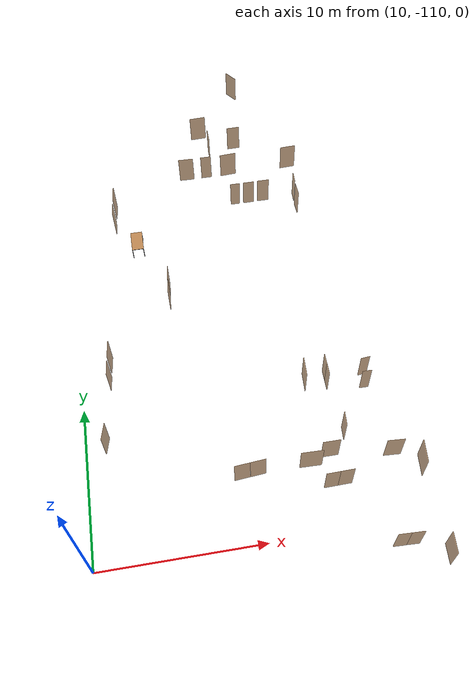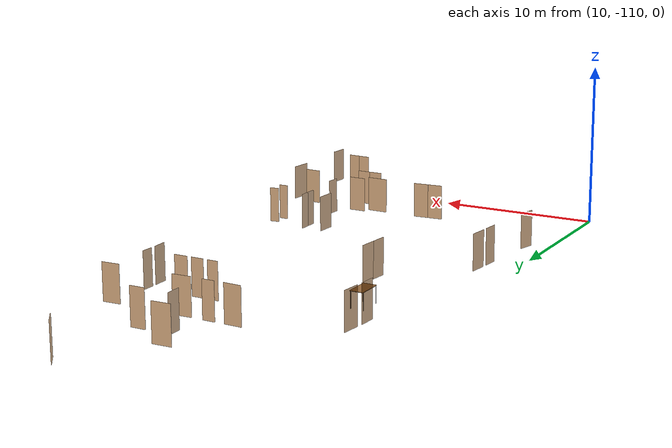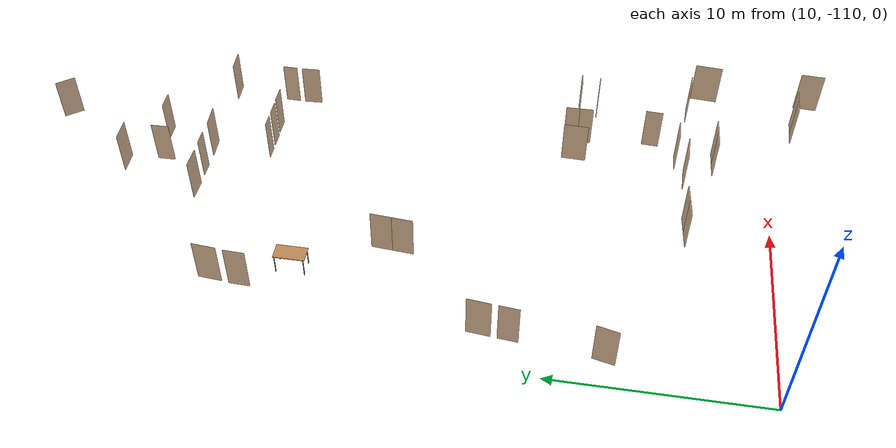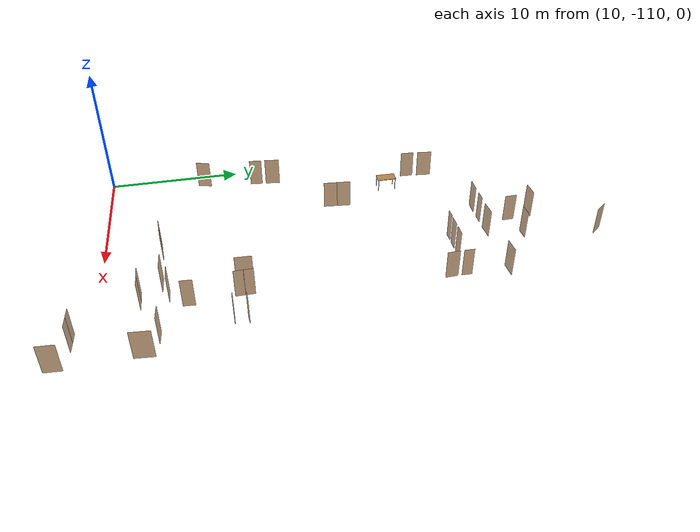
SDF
<sdf version="1.7">
 <world name="world">
  <include><uri>model://sun</uri></include>
  <include>
   <name>OpenRobotics/Table</name>
   <uri>model://Table</uri>
   <pose>14.445396386706355 -88.01514877491877 0.0 0 0 1.5708</pose>
   <static>True</static>
  </include>
  <model name="D52">
   <pose>23.254446349736916 -73.76182877562223 0.0 0 0 2.227248862246875</pose>
   <link name="right">
    <pose>0 0 1.11 0 0 0</pose>
    <visual name="right_visual">
     <geometry><box><size>1.0077316663653095 0.03 2.2</size></box></geometry>
     <material><ambient>0.5 0.25 0 0.6</ambient><diffuse>0.5 0.25 0 0.6</diffuse></material>
    </visual>
    <collision name="right_collision">
     <geometry><box><size>1.0077316663653095 0.03 2.2</size></box></geometry>
     <surface><contact><collide_bitmask>0x02</collide_bitmask></contact></surface>
    </collision>
    <inertial>
     <mass>50.0</mass>
     <inertia><ixx>20.17041666666667</ixx><iyy>24.398012964147522</iyy><izz>4.2350962974808475</izz></inertia>
    </inertial>
   </link>
   <joint name="right_joint" type="revolute">
    <parent>world</parent>
    <child>right</child>
    <axis><xyz>0 0 1</xyz><limit><lower>0</lower><upper>1.57</upper></limit></axis>
    <pose>0.5088658331826548 0 0 0 0 0</pose>
   </joint>
   <plugin name="door_D52" filename="libdoor.so">
    <v_max_door>0.5</v_max_door>
    <a_max_door>0.3</a_max_door>
    <a_nom_door>0.15</a_nom_door>
    <dx_min_door>0.01</dx_min_door>
    <f_max_door>500.0</f_max_door>
    <door name="D52" type="SwingDoor" left_joint_name="empty_joint" right_joint_name="right_joint"/>
   </plugin>
  </model>
  <model name="D53">
   <pose>20.62968694608043 -79.80845036280539 0.0 0 0 -1.5535147290072342</pose>
   <link name="right">
    <pose>0 0 1.11 0 0 0</pose>
    <visual name="right_visual">
     <geometry><box><size>0.879204578517562 0.03 2.2</size></box></geometry>
     <material><ambient>0.5 0.25 0 0.6</ambient><diffuse>0.5 0.25 0 0.6</diffuse></material>
    </visual>
    <collision name="right_collision">
     <geometry><box><size>0.879204578517562 0.03 2.2</size></box></geometry>
     <surface><contact><collide_bitmask>0x02</collide_bitmask></contact></surface>
    </collision>
    <inertial>
     <mass>50.0</mass>
     <inertia><ixx>20.17041666666667</ixx><iyy>23.387502878692686</iyy><izz>3.2245862120260163</izz></inertia>
    </inertial>
   </link>
   <joint name="right_joint" type="revolute">
    <parent>world</parent>
    <child>right</child>
    <axis><xyz>0 0 1</xyz><limit><lower>0</lower><upper>1.57</upper></limit></axis>
    <pose>0.444602289258781 0 0 0 0 0</pose>
   </joint>
   <plugin name="door_D53" filename="libdoor.so">
    <v_max_door>0.5</v_max_door>
    <a_max_door>0.3</a_max_door>
    <a_nom_door>0.15</a_nom_door>
    <dx_min_door>0.01</dx_min_door>
    <f_max_door>500.0</f_max_door>
    <door name="D53" type="SwingDoor" left_joint_name="empty_joint" right_joint_name="right_joint"/>
   </plugin>
  </model>
  <model name="D54">
   <pose>20.039400637868695 -77.98841988299327 0.0 0 0 0.042373588215441974</pose>
   <link name="right">
    <pose>0 0 1.11 0 0 0</pose>
    <visual name="right_visual">
     <geometry><box><size>1.1373417640530366 0.03 2.2</size></box></geometry>
     <material><ambient>0.5 0.25 0 0.6</ambient><diffuse>0.5 0.25 0 0.6</diffuse></material>
    </visual>
    <collision name="right_collision">
     <geometry><box><size>1.1373417640530366 0.03 2.2</size></box></geometry>
     <surface><contact><collide_bitmask>0x02</collide_bitmask></contact></surface>
    </collision>
    <inertial>
     <mass>50.0</mass>
     <inertia><ixx>20.17041666666667</ixx><iyy>25.556442867746973</iyy><izz>5.393526201080304</izz></inertia>
    </inertial>
   </link>
   <joint name="right_joint" type="revolute">
    <parent>world</parent>
    <child>right</child>
    <axis><xyz>0 0 -1</xyz><limit><lower>0</lower><upper>1.57</upper></limit></axis>
    <pose>0.5736708820265183 0 0 0 0 0</pose>
   </joint>
   <plugin name="door_D54" filename="libdoor.so">
    <v_max_door>0.5</v_max_door>
    <a_max_door>0.3</a_max_door>
    <a_nom_door>0.15</a_nom_door>
    <dx_min_door>0.01</dx_min_door>
    <f_max_door>500.0</f_max_door>
    <door name="D54" type="SwingDoor" left_joint_name="empty_joint" right_joint_name="right_joint"/>
   </plugin>
  </model>
  <model name="D55">
   <pose>22.583345680007575 -79.43494004263631 0.0 0 0 -3.1259940674109195</pose>
   <link name="right">
    <pose>0 0 1.11 0 0 0</pose>
    <visual name="right_visual">
     <geometry><box><size>0.909460586963911 0.03 2.2</size></box></geometry>
     <material><ambient>0.5 0.25 0 0.6</ambient><diffuse>0.5 0.25 0 0.6</diffuse></material>
    </visual>
    <collision name="right_collision">
     <geometry><box><size>0.909460586963911 0.03 2.2</size></box></geometry>
     <surface><contact><collide_bitmask>0x02</collide_bitmask></contact></surface>
    </collision>
    <inertial>
     <mass>50.0</mass>
     <inertia><ixx>20.17041666666667</ixx><iyy>23.612993996836426</iyy><izz>3.4500773301697567</izz></inertia>
    </inertial>
   </link>
   <joint name="right_joint" type="revolute">
    <parent>world</parent>
    <child>right</child>
    <axis><xyz>0 0 1</xyz><limit><lower>0</lower><upper>1.57</upper></limit></axis>
    <pose>0.4597302934819555 0 0 0 0 0</pose>
   </joint>
   <plugin name="door_D55" filename="libdoor.so">
    <v_max_door>0.5</v_max_door>
    <a_max_door>0.3</a_max_door>
    <a_nom_door>0.15</a_nom_door>
    <dx_min_door>0.01</dx_min_door>
    <f_max_door>500.0</f_max_door>
    <door name="D55" type="SwingDoor" left_joint_name="empty_joint" right_joint_name="right_joint"/>
   </plugin>
  </model>
  <model name="D56">
   <pose>26.32692869850541 -82.03733321806999 0.0 0 0 0.05173139781728981</pose>
   <link name="right">
    <pose>0 0 1.11 0 0 0</pose>
    <visual name="right_visual">
     <geometry><box><size>1.092827106967512 0.03 2.2</size></box></geometry>
     <material><ambient>0.5 0.25 0 0.6</ambient><diffuse>0.5 0.25 0 0.6</diffuse></material>
    </visual>
    <collision name="right_collision">
     <geometry><box><size>1.092827106967512 0.03 2.2</size></box></geometry>
     <surface><contact><collide_bitmask>0x02</collide_bitmask></contact></surface>
    </collision>
    <inertial>
     <mass>50.0</mass>
     <inertia><ixx>20.17041666666667</ixx><iyy>25.14279619051243</iyy><izz>4.979879523845758</izz></inertia>
    </inertial>
   </link>
   <joint name="right_joint" type="revolute">
    <parent>world</parent>
    <child>right</child>
    <axis><xyz>0 0 1</xyz><limit><lower>0</lower><upper>1.57</upper></limit></axis>
    <pose>0.551413553483756 0 0 0 0 0</pose>
   </joint>
   <plugin name="door_D56" filename="libdoor.so">
    <v_max_door>0.5</v_max_door>
    <a_max_door>0.3</a_max_door>
    <a_nom_door>0.15</a_nom_door>
    <dx_min_door>0.01</dx_min_door>
    <f_max_door>500.0</f_max_door>
    <door name="D56" type="SwingDoor" left_joint_name="empty_joint" right_joint_name="right_joint"/>
   </plugin>
  </model>
  <model name="D57">
   <pose>21.78476320056031 -82.0636263413243 0.0 0 0 -3.07997180953874</pose>
   <link name="right">
    <pose>0 0 1.11 0 0 0</pose>
    <visual name="right_visual">
     <geometry><box><size>1.1378074384520853 0.03 2.2</size></box></geometry>
     <material><ambient>0.5 0.25 0 0.6</ambient><diffuse>0.5 0.25 0 0.6</diffuse></material>
    </visual>
    <collision name="right_collision">
     <geometry><box><size>1.1378074384520853 0.03 2.2</size></box></geometry>
     <surface><contact><collide_bitmask>0x02</collide_bitmask></contact></surface>
    </collision>
    <inertial>
     <mass>50.0</mass>
     <inertia><ixx>20.17041666666667</ixx><iyy>25.56085736248707</iyy><izz>5.3979406958204</izz></inertia>
    </inertial>
   </link>
   <joint name="right_joint" type="revolute">
    <parent>world</parent>
    <child>right</child>
    <axis><xyz>0 0 -1</xyz><limit><lower>0</lower><upper>1.57</upper></limit></axis>
    <pose>0.5739037192260427 0 0 0 0 0</pose>
   </joint>
   <plugin name="door_D57" filename="libdoor.so">
    <v_max_door>0.5</v_max_door>
    <a_max_door>0.3</a_max_door>
    <a_nom_door>0.15</a_nom_door>
    <dx_min_door>0.01</dx_min_door>
    <f_max_door>500.0</f_max_door>
    <door name="D57" type="SwingDoor" left_joint_name="empty_joint" right_joint_name="right_joint"/>
   </plugin>
  </model>
  <model name="D58">
   <pose>20.138540509533257 -82.07313056553095 0.0 0 0 3.141592653589793</pose>
   <link name="right">
    <pose>0 0 1.11 0 0 0</pose>
    <visual name="right_visual">
     <geometry><box><size>0.7488582369548042 0.03 2.2</size></box></geometry>
     <material><ambient>0.5 0.25 0 0.6</ambient><diffuse>0.5 0.25 0 0.6</diffuse></material>
    </visual>
    <collision name="right_collision">
     <geometry><box><size>0.7488582369548042 0.03 2.2</size></box></geometry>
     <surface><contact><collide_bitmask>0x02</collide_bitmask></contact></surface>
    </collision>
    <inertial>
     <mass>50.0</mass>
     <inertia><ixx>20.17041666666667</ixx><iyy>22.503286079396077</iyy><izz>2.3403694127294075</izz></inertia>
    </inertial>
   </link>
   <joint name="right_joint" type="revolute">
    <parent>world</parent>
    <child>right</child>
    <axis><xyz>0 0 -1</xyz><limit><lower>0</lower><upper>1.57</upper></limit></axis>
    <pose>0.3794291184774021 0 0 0 0 0</pose>
   </joint>
   <plugin name="door_D58" filename="libdoor.so">
    <v_max_door>0.5</v_max_door>
    <a_max_door>0.3</a_max_door>
    <a_nom_door>0.15</a_nom_door>
    <dx_min_door>0.01</dx_min_door>
    <f_max_door>500.0</f_max_door>
    <door name="D58" type="SwingDoor" left_joint_name="empty_joint" right_joint_name="right_joint"/>
   </plugin>
  </model>
  <model name="D59">
   <pose>18.661572685515626 -82.07273218487558 0.0 0 0 3.1111630873704392</pose>
   <link name="right">
    <pose>0 0 1.11 0 0 0</pose>
    <visual name="right_visual">
     <geometry><box><size>1.0562187637072085 0.03 2.2</size></box></geometry>
     <material><ambient>0.5 0.25 0 0.6</ambient><diffuse>0.5 0.25 0 0.6</diffuse></material>
    </visual>
    <collision name="right_collision">
     <geometry><box><size>1.0562187637072085 0.03 2.2</size></box></geometry>
     <surface><contact><collide_bitmask>0x02</collide_bitmask></contact></surface>
    </collision>
    <inertial>
     <mass>50.0</mass>
     <inertia><ixx>20.17041666666667</ixx><iyy>24.814991986696604</iyy><izz>4.652075320029932</izz></inertia>
    </inertial>
   </link>
   <joint name="right_joint" type="revolute">
    <parent>world</parent>
    <child>right</child>
    <axis><xyz>0 0 1</xyz><limit><lower>0</lower><upper>1.57</upper></limit></axis>
    <pose>0.5331093818536042 0 0 0 0 0</pose>
   </joint>
   <plugin name="door_D59" filename="libdoor.so">
    <v_max_door>0.5</v_max_door>
    <a_max_door>0.3</a_max_door>
    <a_nom_door>0.15</a_nom_door>
    <dx_min_door>0.01</dx_min_door>
    <f_max_door>500.0</f_max_door>
    <door name="D59" type="SwingDoor" left_joint_name="empty_joint" right_joint_name="right_joint"/>
   </plugin>
  </model>
  <model name="D60">
   <pose>26.209918608871458 -85.05239184094322 0.0 0 0 -1.5963887875371978</pose>
   <link name="right">
    <pose>0 0 1.11 0 0 0</pose>
    <visual name="right_visual">
     <geometry><box><size>0.7372653466854324 0.03 2.2</size></box></geometry>
     <material><ambient>0.5 0.25 0 0.6</ambient><diffuse>0.5 0.25 0 0.6</diffuse></material>
    </visual>
    <collision name="right_collision">
     <geometry><box><size>0.7372653466854324 0.03 2.2</size></box></geometry>
     <surface><contact><collide_bitmask>0x02</collide_bitmask></contact></surface>
    </collision>
    <inertial>
     <mass>50.0</mass>
     <inertia><ixx>20.17041666666667</ixx><iyy>22.43150079759663</iyy><izz>2.268584130929962</izz></inertia>
    </inertial>
   </link>
   <joint name="right_joint" type="revolute">
    <parent>world</parent>
    <child>right</child>
    <axis><xyz>0 0 1</xyz><limit><lower>0</lower><upper>1.57</upper></limit></axis>
    <pose>0.3736326733427162 0 0 0 0 0</pose>
   </joint>
   <plugin name="door_D60" filename="libdoor.so">
    <v_max_door>0.5</v_max_door>
    <a_max_door>0.3</a_max_door>
    <a_nom_door>0.15</a_nom_door>
    <dx_min_door>0.01</dx_min_door>
    <f_max_door>500.0</f_max_door>
    <door name="D60" type="SwingDoor" left_joint_name="empty_joint" right_joint_name="right_joint"/>
   </plugin>
  </model>
  <model name="D61">
   <pose>26.21219506975928 -86.15328832629297 0.0 0 0 -1.518374128956688</pose>
   <link name="right">
    <pose>0 0 1.11 0 0 0</pose>
    <visual name="right_visual">
     <geometry><box><size>0.9197317723871182 0.03 2.2</size></box></geometry>
     <material><ambient>0.5 0.25 0 0.6</ambient><diffuse>0.5 0.25 0 0.6</diffuse></material>
    </visual>
    <collision name="right_collision">
     <geometry><box><size>0.9197317723871182 0.03 2.2</size></box></geometry>
     <surface><contact><collide_bitmask>0x02</collide_bitmask></contact></surface>
    </collision>
    <inertial>
     <mass>50.0</mass>
     <inertia><ixx>20.17041666666667</ixx><iyy>23.691277221409795</iyy><izz>3.5283605547431245</izz></inertia>
    </inertial>
   </link>
   <joint name="right_joint" type="revolute">
    <parent>world</parent>
    <child>right</child>
    <axis><xyz>0 0 1</xyz><limit><lower>0</lower><upper>1.57</upper></limit></axis>
    <pose>0.4648658861935591 0 0 0 0 0</pose>
   </joint>
   <plugin name="door_D61" filename="libdoor.so">
    <v_max_door>0.5</v_max_door>
    <a_max_door>0.3</a_max_door>
    <a_nom_door>0.15</a_nom_door>
    <dx_min_door>0.01</dx_min_door>
    <f_max_door>500.0</f_max_door>
    <door name="D61" type="SwingDoor" left_joint_name="empty_joint" right_joint_name="right_joint"/>
   </plugin>
  </model>
  <model name="D62">
   <pose>23.93157964081898 -84.99263474263793 0.0 0 0 -0.0022748522246992644</pose>
   <link name="right">
    <pose>0 0 1.11 0 0 0</pose>
    <visual name="right_visual">
     <geometry><box><size>0.8406018116450529 0.03 2.2</size></box></geometry>
     <material><ambient>0.5 0.25 0 0.6</ambient><diffuse>0.5 0.25 0 0.6</diffuse></material>
    </visual>
    <collision name="right_collision">
     <geometry><box><size>0.8406018116450529 0.03 2.2</size></box></geometry>
     <surface><contact><collide_bitmask>0x02</collide_bitmask></contact></surface>
    </collision>
    <inertial>
     <mass>50.0</mass>
     <inertia><ixx>20.17041666666667</ixx><iyy>23.11088085725394</iyy><izz>2.9479641905872707</izz></inertia>
    </inertial>
   </link>
   <joint name="right_joint" type="revolute">
    <parent>world</parent>
    <child>right</child>
    <axis><xyz>0 0 1</xyz><limit><lower>0</lower><upper>1.57</upper></limit></axis>
    <pose>0.42530090582252644 0 0 0 0 0</pose>
   </joint>
   <plugin name="door_D62" filename="libdoor.so">
    <v_max_door>0.5</v_max_door>
    <a_max_door>0.3</a_max_door>
    <a_nom_door>0.15</a_nom_door>
    <dx_min_door>0.01</dx_min_door>
    <f_max_door>500.0</f_max_door>
    <door name="D62" type="SwingDoor" left_joint_name="empty_joint" right_joint_name="right_joint"/>
   </plugin>
  </model>
  <model name="D63">
   <pose>22.875017231259513 -85.00714718079779 0.0 0 0 0.0</pose>
   <link name="right">
    <pose>0 0 1.11 0 0 0</pose>
    <visual name="right_visual">
     <geometry><box><size>0.768094331456888 0.03 2.2</size></box></geometry>
     <material><ambient>0.5 0.25 0 0.6</ambient><diffuse>0.5 0.25 0 0.6</diffuse></material>
    </visual>
    <collision name="right_collision">
     <geometry><box><size>0.768094331456888 0.03 2.2</size></box></geometry>
     <surface><contact><collide_bitmask>0x02</collide_bitmask></contact></surface>
    </collision>
    <inertial>
     <mass>50.0</mass>
     <inertia><ixx>20.17041666666667</ixx><iyy>22.62487042506752</iyy><izz>2.4619537584008486</izz></inertia>
    </inertial>
   </link>
   <joint name="right_joint" type="revolute">
    <parent>world</parent>
    <child>right</child>
    <axis><xyz>0 0 1</xyz><limit><lower>0</lower><upper>1.57</upper></limit></axis>
    <pose>0.389047165728444 0 0 0 0 0</pose>
   </joint>
   <plugin name="door_D63" filename="libdoor.so">
    <v_max_door>0.5</v_max_door>
    <a_max_door>0.3</a_max_door>
    <a_nom_door>0.15</a_nom_door>
    <dx_min_door>0.01</dx_min_door>
    <f_max_door>500.0</f_max_door>
    <door name="D63" type="SwingDoor" left_joint_name="empty_joint" right_joint_name="right_joint"/>
   </plugin>
  </model>
  <model name="D64">
   <pose>21.890618631843942 -85.00248043597774 0.0 0 0 0.0</pose>
   <link name="right">
    <pose>0 0 1.11 0 0 0</pose>
    <visual name="right_visual">
     <geometry><box><size>0.6607592005961693 0.03 2.2</size></box></geometry>
     <material><ambient>0.5 0.25 0 0.6</ambient><diffuse>0.5 0.25 0 0.6</diffuse></material>
    </visual>
    <collision name="right_collision">
     <geometry><box><size>0.6607592005961693 0.03 2.2</size></box></geometry>
     <surface><contact><collide_bitmask>0x02</collide_bitmask></contact></surface>
    </collision>
    <inertial>
     <mass>50.0</mass>
     <inertia><ixx>20.17041666666667</ixx><iyy>21.98584467155204</iyy><izz>1.8229280048853698</izz></inertia>
    </inertial>
   </link>
   <joint name="right_joint" type="revolute">
    <parent>world</parent>
    <child>right</child>
    <axis><xyz>0 0 1</xyz><limit><lower>0</lower><upper>1.57</upper></limit></axis>
    <pose>0.33537960029808467 0 0 0 0 0</pose>
   </joint>
   <plugin name="door_D64" filename="libdoor.so">
    <v_max_door>0.5</v_max_door>
    <a_max_door>0.3</a_max_door>
    <a_nom_door>0.15</a_nom_door>
    <dx_min_door>0.01</dx_min_door>
    <f_max_door>500.0</f_max_door>
    <door name="D64" type="SwingDoor" left_joint_name="empty_joint" right_joint_name="right_joint"/>
   </plugin>
  </model>
  <model name="D66">
   <pose>13.176440176313278 -84.45095087438116 0.0 0 0 -1.664618006042261</pose>
   <link name="right">
    <pose>0 0 1.11 0 0 0</pose>
    <visual name="right_visual">
     <geometry><box><size>1.1502930768641446 0.03 2.2</size></box></geometry>
     <material><ambient>0.5 0.25 0 0.6</ambient><diffuse>0.5 0.25 0 0.6</diffuse></material>
    </visual>
    <collision name="right_collision">
     <geometry><box><size>1.1502930768641446 0.03 2.2</size></box></geometry>
     <surface><contact><collide_bitmask>0x02</collide_bitmask></contact></surface>
    </collision>
    <inertial>
     <mass>50.0</mass>
     <inertia><ixx>20.17041666666667</ixx><iyy>25.67989234450659</iyy><izz>5.516975677839921</izz></inertia>
    </inertial>
   </link>
   <joint name="right_joint" type="revolute">
    <parent>world</parent>
    <child>right</child>
    <axis><xyz>0 0 -1</xyz><limit><lower>0</lower><upper>1.57</upper></limit></axis>
    <pose>0.5801465384320723 0 0 0 0 0</pose>
   </joint>
   <plugin name="door_D66" filename="libdoor.so">
    <v_max_door>0.5</v_max_door>
    <a_max_door>0.3</a_max_door>
    <a_nom_door>0.15</a_nom_door>
    <dx_min_door>0.01</dx_min_door>
    <f_max_door>500.0</f_max_door>
    <door name="D66" type="SwingDoor" left_joint_name="empty_joint" right_joint_name="right_joint"/>
   </plugin>
  </model>
  <model name="D67">
   <pose>13.042185895454093 -85.88426756087483 0.0 0 0 1.5266714472959082</pose>
   <link name="right">
    <pose>0 0 1.11 0 0 0</pose>
    <visual name="right_visual">
     <geometry><box><size>1.0170005475308557 0.03 2.2</size></box></geometry>
     <material><ambient>0.5 0.25 0 0.6</ambient><diffuse>0.5 0.25 0 0.6</diffuse></material>
    </visual>
    <collision name="right_collision">
     <geometry><box><size>1.0170005475308557 0.03 2.2</size></box></geometry>
     <surface><contact><collide_bitmask>0x02</collide_bitmask></contact></surface>
    </collision>
    <inertial>
     <mass>50.0</mass>
     <inertia><ixx>20.17041666666667</ixx><iyy>24.476208806991924</iyy><izz>4.313292140325251</izz></inertia>
    </inertial>
   </link>
   <joint name="right_joint" type="revolute">
    <parent>world</parent>
    <child>right</child>
    <axis><xyz>0 0 1</xyz><limit><lower>0</lower><upper>1.57</upper></limit></axis>
    <pose>0.5135002737654278 0 0 0 0 0</pose>
   </joint>
   <plugin name="door_D67" filename="libdoor.so">
    <v_max_door>0.5</v_max_door>
    <a_max_door>0.3</a_max_door>
    <a_nom_door>0.15</a_nom_door>
    <dx_min_door>0.01</dx_min_door>
    <f_max_door>500.0</f_max_door>
    <door name="D67" type="SwingDoor" left_joint_name="empty_joint" right_joint_name="right_joint"/>
   </plugin>
  </model>
  <model name="D68">
   <pose>11.951078191921955 -97.058731120917 0.0 0 0 -1.6828701030195226</pose>
   <link name="right">
    <pose>0 0 1.11 0 0 0</pose>
    <visual name="right_visual">
     <geometry><box><size>1.1257949389694284 0.03 2.2</size></box></geometry>
     <material><ambient>0.5 0.25 0 0.6</ambient><diffuse>0.5 0.25 0 0.6</diffuse></material>
    </visual>
    <collision name="right_collision">
     <geometry><box><size>1.1257949389694284 0.03 2.2</size></box></geometry>
     <surface><contact><collide_bitmask>0x02</collide_bitmask></contact></surface>
    </collision>
    <inertial>
     <mass>50.0</mass>
     <inertia><ixx>20.17041666666667</ixx><iyy>25.44755935253825</iyy><izz>5.284642685871579</izz></inertia>
    </inertial>
   </link>
   <joint name="right_joint" type="revolute">
    <parent>world</parent>
    <child>right</child>
    <axis><xyz>0 0 -1</xyz><limit><lower>0</lower><upper>1.57</upper></limit></axis>
    <pose>0.5678974694847142 0 0 0 0 0</pose>
   </joint>
   <plugin name="door_D68" filename="libdoor.so">
    <v_max_door>0.5</v_max_door>
    <a_max_door>0.3</a_max_door>
    <a_nom_door>0.15</a_nom_door>
    <dx_min_door>0.01</dx_min_door>
    <f_max_door>500.0</f_max_door>
    <door name="D68" type="SwingDoor" left_joint_name="empty_joint" right_joint_name="right_joint"/>
   </plugin>
  </model>
  <model name="D69">
   <pose>11.811758785587369 -98.3854525263385 0.0 0 0 1.4711512987692272</pose>
   <link name="right">
    <pose>0 0 1.11 0 0 0</pose>
    <visual name="right_visual">
     <geometry><box><size>0.9488209504296069 0.03 2.2</size></box></geometry>
     <material><ambient>0.5 0.25 0 0.6</ambient><diffuse>0.5 0.25 0 0.6</diffuse></material>
    </visual>
    <collision name="right_collision">
     <geometry><box><size>0.9488209504296069 0.03 2.2</size></box></geometry>
     <surface><contact><collide_bitmask>0x02</collide_bitmask></contact></surface>
    </collision>
    <inertial>
     <mass>50.0</mass>
     <inertia><ixx>20.17041666666667</ixx><iyy>23.9177549832256</iyy><izz>3.754838316558928</izz></inertia>
    </inertial>
   </link>
   <joint name="right_joint" type="revolute">
    <parent>world</parent>
    <child>right</child>
    <axis><xyz>0 0 1</xyz><limit><lower>0</lower><upper>1.57</upper></limit></axis>
    <pose>0.47941047521480346 0 0 0 0 0</pose>
   </joint>
   <plugin name="door_D69" filename="libdoor.so">
    <v_max_door>0.5</v_max_door>
    <a_max_door>0.3</a_max_door>
    <a_nom_door>0.15</a_nom_door>
    <dx_min_door>0.01</dx_min_door>
    <f_max_door>500.0</f_max_door>
    <door name="D69" type="SwingDoor" left_joint_name="empty_joint" right_joint_name="right_joint"/>
   </plugin>
  </model>
  <model name="D70">
   <pose>23.9237827622782 -100.32420044145043 0.0 0 0 -1.6090097183700522</pose>
   <link name="right">
    <pose>0 0 1.11 0 0 0</pose>
    <visual name="right_visual">
     <geometry><box><size>1.2115300973058376 0.03 2.2</size></box></geometry>
     <material><ambient>0.5 0.25 0 0.6</ambient><diffuse>0.5 0.25 0 0.6</diffuse></material>
    </visual>
    <collision name="right_collision">
     <geometry><box><size>1.2115300973058376 0.03 2.2</size></box></geometry>
     <surface><contact><collide_bitmask>0x02</collide_bitmask></contact></surface>
    </collision>
    <inertial>
     <mass>50.0</mass>
     <inertia><ixx>20.17041666666667</ixx><iyy>26.282521569491223</iyy><izz>6.119604902824552</izz></inertia>
    </inertial>
   </link>
   <joint name="right_joint" type="revolute">
    <parent>world</parent>
    <child>right</child>
    <axis><xyz>0 0 1</xyz><limit><lower>0</lower><upper>1.57</upper></limit></axis>
    <pose>0.6107650486529188 0 0 0 0 0</pose>
   </joint>
   <plugin name="door_D70" filename="libdoor.so">
    <v_max_door>0.5</v_max_door>
    <a_max_door>0.3</a_max_door>
    <a_nom_door>0.15</a_nom_door>
    <dx_min_door>0.01</dx_min_door>
    <f_max_door>500.0</f_max_door>
    <door name="D70" type="SwingDoor" left_joint_name="empty_joint" right_joint_name="right_joint"/>
   </plugin>
  </model>
  <model name="D71">
   <pose>27.7398710600531 -100.35817662020114 0.0 0 0 0.08312523368022348</pose>
   <link name="right">
    <pose>0 0 1.11 0 0 0</pose>
    <visual name="right_visual">
     <geometry><box><size>0.5808467512425038 0.03 2.2</size></box></geometry>
     <material><ambient>0.5 0.25 0 0.6</ambient><diffuse>0.5 0.25 0 0.6</diffuse></material>
    </visual>
    <collision name="right_collision">
     <geometry><box><size>0.5808467512425038 0.03 2.2</size></box></geometry>
     <surface><contact><collide_bitmask>0x02</collide_bitmask></contact></surface>
    </collision>
    <inertial>
     <mass>50.0</mass>
     <inertia><ixx>20.17041666666667</ixx><iyy>21.572428951787384</iyy><izz>1.4095122851207134</izz></inertia>
    </inertial>
   </link>
   <joint name="right_joint" type="revolute">
    <parent>world</parent>
    <child>right</child>
    <axis><xyz>0 0 -1</xyz><limit><lower>0</lower><upper>1.57</upper></limit></axis>
    <pose>0.2954233756212519 0 0 0 0 0</pose>
   </joint>
   <plugin name="door_D71" filename="libdoor.so">
    <v_max_door>0.5</v_max_door>
    <a_max_door>0.3</a_max_door>
    <a_nom_door>0.15</a_nom_door>
    <dx_min_door>0.01</dx_min_door>
    <f_max_door>500.0</f_max_door>
    <door name="D71" type="SwingDoor" left_joint_name="empty_joint" right_joint_name="right_joint"/>
   </plugin>
  </model>
  <model name="D72">
   <pose>27.62895050329407 -101.28099695260119 0.0 0 0 -0.018328680504599446</pose>
   <link name="right">
    <pose>0 0 1.11 0 0 0</pose>
    <visual name="right_visual">
     <geometry><box><size>0.5737826270142286 0.03 2.2</size></box></geometry>
     <material><ambient>0.5 0.25 0 0.6</ambient><diffuse>0.5 0.25 0 0.6</diffuse></material>
    </visual>
    <collision name="right_collision">
     <geometry><box><size>0.5737826270142286 0.03 2.2</size></box></geometry>
     <surface><contact><collide_bitmask>0x02</collide_bitmask></contact></surface>
    </collision>
    <inertial>
     <mass>50.0</mass>
     <inertia><ixx>20.17041666666667</ixx><iyy>21.53844376276396</iyy><izz>1.375527096097289</izz></inertia>
    </inertial>
   </link>
   <joint name="right_joint" type="revolute">
    <parent>world</parent>
    <child>right</child>
    <axis><xyz>0 0 1</xyz><limit><lower>0</lower><upper>1.57</upper></limit></axis>
    <pose>0.2918913135071143 0 0 0 0 0</pose>
   </joint>
   <plugin name="door_D72" filename="libdoor.so">
    <v_max_door>0.5</v_max_door>
    <a_max_door>0.3</a_max_door>
    <a_nom_door>0.15</a_nom_door>
    <dx_min_door>0.01</dx_min_door>
    <f_max_door>500.0</f_max_door>
    <door name="D72" type="SwingDoor" left_joint_name="empty_joint" right_joint_name="right_joint"/>
   </plugin>
  </model>
  <model name="D73">
   <pose>25.59692460330372 -104.14620753753366 0.0 0 0 -1.6311382532717913</pose>
   <link name="right">
    <pose>0 0 1.11 0 0 0</pose>
    <visual name="right_visual">
     <geometry><box><size>0.8412382985519665 0.03 2.2</size></box></geometry>
     <material><ambient>0.5 0.25 0 0.6</ambient><diffuse>0.5 0.25 0 0.6</diffuse></material>
    </visual>
    <collision name="right_collision">
     <geometry><box><size>0.8412382985519665 0.03 2.2</size></box></geometry>
     <surface><contact><collide_bitmask>0x02</collide_bitmask></contact></surface>
    </collision>
    <inertial>
     <mass>50.0</mass>
     <inertia><ixx>20.17041666666667</ixx><iyy>23.11534114562754</iyy><izz>2.952424478960865</izz></inertia>
    </inertial>
   </link>
   <joint name="right_joint" type="revolute">
    <parent>world</parent>
    <child>right</child>
    <axis><xyz>0 0 1</xyz><limit><lower>0</lower><upper>1.57</upper></limit></axis>
    <pose>0.42561914927598327 0 0 0 0 0</pose>
   </joint>
   <plugin name="door_D73" filename="libdoor.so">
    <v_max_door>0.5</v_max_door>
    <a_max_door>0.3</a_max_door>
    <a_nom_door>0.15</a_nom_door>
    <dx_min_door>0.01</dx_min_door>
    <f_max_door>500.0</f_max_door>
    <door name="D73" type="SwingDoor" left_joint_name="empty_joint" right_joint_name="right_joint"/>
   </plugin>
  </model>
  <model name="D74">
   <pose>24.481914060449476 -105.42495252974436 0.0 0 0 3.141592653589793</pose>
   <link name="right">
    <pose>0 0 1.11 0 0 0</pose>
    <visual name="right_visual">
     <geometry><box><size>1.071432744758903 0.03 2.2</size></box></geometry>
     <material><ambient>0.5 0.25 0 0.6</ambient><diffuse>0.5 0.25 0 0.6</diffuse></material>
    </visual>
    <collision name="right_collision">
     <geometry><box><size>1.071432744758903 0.03 2.2</size></box></geometry>
     <surface><contact><collide_bitmask>0x02</collide_bitmask></contact></surface>
    </collision>
    <inertial>
     <mass>50.0</mass>
     <inertia><ixx>20.17041666666667</ixx><iyy>24.949867193923325</iyy><izz>4.786950527256652</izz></inertia>
    </inertial>
   </link>
   <joint name="right_joint" type="revolute">
    <parent>world</parent>
    <child>right</child>
    <axis><xyz>0 0 1</xyz><limit><lower>0</lower><upper>1.57</upper></limit></axis>
    <pose>0.5407163723794515 0 0 0 0 0</pose>
   </joint>
   <plugin name="door_D74" filename="libdoor.so">
    <v_max_door>0.5</v_max_door>
    <a_max_door>0.3</a_max_door>
    <a_nom_door>0.15</a_nom_door>
    <dx_min_door>0.01</dx_min_door>
    <f_max_door>500.0</f_max_door>
    <door name="D74" type="SwingDoor" left_joint_name="empty_joint" right_joint_name="right_joint"/>
   </plugin>
  </model>
  <model name="D75">
   <pose>23.22860851866016 -105.87779751185397 0.0 0 0 3.1148977325831293</pose>
   <link name="right">
    <pose>0 0 1.11 0 0 0</pose>
    <visual name="right_visual">
     <geometry><box><size>1.350328580421672 0.03 2.2</size></box></geometry>
     <material><ambient>0.5 0.25 0 0.6</ambient><diffuse>0.5 0.25 0 0.6</diffuse></material>
    </visual>
    <collision name="right_collision">
     <geometry><box><size>1.350328580421672 0.03 2.2</size></box></geometry>
     <surface><contact><collide_bitmask>0x02</collide_bitmask></contact></surface>
    </collision>
    <inertial>
     <mass>50.0</mass>
     <inertia><ixx>20.17041666666667</ixx><iyy>27.764113646265038</iyy><izz>7.601196979598367</izz></inertia>
    </inertial>
   </link>
   <joint name="right_joint" type="revolute">
    <parent>world</parent>
    <child>right</child>
    <axis><xyz>0 0 -1</xyz><limit><lower>0</lower><upper>1.57</upper></limit></axis>
    <pose>0.680164290210836 0 0 0 0 0</pose>
   </joint>
   <plugin name="door_D75" filename="libdoor.so">
    <v_max_door>0.5</v_max_door>
    <a_max_door>0.3</a_max_door>
    <a_nom_door>0.15</a_nom_door>
    <dx_min_door>0.01</dx_min_door>
    <f_max_door>500.0</f_max_door>
    <door name="D75" type="SwingDoor" left_joint_name="empty_joint" right_joint_name="right_joint"/>
   </plugin>
  </model>
  <model name="D76">
   <pose>28.222139299137773 -105.97676664895194 0.0 0 0 3.0812740085195456</pose>
   <link name="right">
    <pose>0 0 1.11 0 0 0</pose>
    <visual name="right_visual">
     <geometry><box><size>1.054930112613027 0.03 2.2</size></box></geometry>
     <material><ambient>0.5 0.25 0 0.6</ambient><diffuse>0.5 0.25 0 0.6</diffuse></material>
    </visual>
    <collision name="right_collision">
     <geometry><box><size>1.054930112613027 0.03 2.2</size></box></geometry>
     <surface><contact><collide_bitmask>0x02</collide_bitmask></contact></surface>
    </collision>
    <inertial>
     <mass>50.0</mass>
     <inertia><ixx>20.17041666666667</ixx><iyy>24.803656427073896</iyy><izz>4.640739760407225</izz></inertia>
    </inertial>
   </link>
   <joint name="right_joint" type="revolute">
    <parent>world</parent>
    <child>right</child>
    <axis><xyz>0 0 1</xyz><limit><lower>0</lower><upper>1.57</upper></limit></axis>
    <pose>0.5324650563065135 0 0 0 0 0</pose>
   </joint>
   <plugin name="door_D76" filename="libdoor.so">
    <v_max_door>0.5</v_max_door>
    <a_max_door>0.3</a_max_door>
    <a_nom_door>0.15</a_nom_door>
    <dx_min_door>0.01</dx_min_door>
    <f_max_door>500.0</f_max_door>
    <door name="D76" type="SwingDoor" left_joint_name="empty_joint" right_joint_name="right_joint"/>
   </plugin>
  </model>
  <model name="D77">
   <pose>29.720221297889935 -106.90118050397345 0.0 0 0 1.4852933933607384</pose>
   <link name="right">
    <pose>0 0 1.11 0 0 0</pose>
    <visual name="right_visual">
     <geometry><box><size>1.3628266653465413 0.03 2.2</size></box></geometry>
     <material><ambient>0.5 0.25 0 0.6</ambient><diffuse>0.5 0.25 0 0.6</diffuse></material>
    </visual>
    <collision name="right_collision">
     <geometry><box><size>1.3628266653465413 0.03 2.2</size></box></geometry>
     <surface><contact><collide_bitmask>0x02</collide_bitmask></contact></surface>
    </collision>
    <inertial>
     <mass>50.0</mass>
     <inertia><ixx>20.17041666666667</ixx><iyy>27.905402165748228</iyy><izz>7.742485499081557</izz></inertia>
    </inertial>
   </link>
   <joint name="right_joint" type="revolute">
    <parent>world</parent>
    <child>right</child>
    <axis><xyz>0 0 1</xyz><limit><lower>0</lower><upper>1.57</upper></limit></axis>
    <pose>0.6864133326732706 0 0 0 0 0</pose>
   </joint>
   <plugin name="door_D77" filename="libdoor.so">
    <v_max_door>0.5</v_max_door>
    <a_max_door>0.3</a_max_door>
    <a_nom_door>0.15</a_nom_door>
    <dx_min_door>0.01</dx_min_door>
    <f_max_door>500.0</f_max_door>
    <door name="D77" type="SwingDoor" left_joint_name="empty_joint" right_joint_name="right_joint"/>
   </plugin>
  </model>
  <model name="D78">
   <pose>29.814239132556903 -112.26127839891228 0.0 0 0 1.512107819970108</pose>
   <link name="right">
    <pose>0 0 1.11 0 0 0</pose>
    <visual name="right_visual">
     <geometry><box><size>1.181502194811254 0.03 2.2</size></box></geometry>
     <material><ambient>0.5 0.25 0 0.6</ambient><diffuse>0.5 0.25 0 0.6</diffuse></material>
    </visual>
    <collision name="right_collision">
     <geometry><box><size>1.181502194811254 0.03 2.2</size></box></geometry>
     <surface><contact><collide_bitmask>0x02</collide_bitmask></contact></surface>
    </collision>
    <inertial>
     <mass>50.0</mass>
     <inertia><ixx>20.17041666666667</ixx><iyy>25.983114318099215</iyy><izz>5.820197651432544</izz></inertia>
    </inertial>
   </link>
   <joint name="right_joint" type="revolute">
    <parent>world</parent>
    <child>right</child>
    <axis><xyz>0 0 1</xyz><limit><lower>0</lower><upper>1.57</upper></limit></axis>
    <pose>0.595751097405627 0 0 0 0 0</pose>
   </joint>
   <plugin name="door_D78" filename="libdoor.so">
    <v_max_door>0.5</v_max_door>
    <a_max_door>0.3</a_max_door>
    <a_nom_door>0.15</a_nom_door>
    <dx_min_door>0.01</dx_min_door>
    <f_max_door>500.0</f_max_door>
    <door name="D78" type="SwingDoor" left_joint_name="empty_joint" right_joint_name="right_joint"/>
   </plugin>
  </model>
  <model name="D79">
   <pose>11.310766655700377 -102.59058798984185 0.0 0 0 1.3294748684009587</pose>
   <link name="right">
    <pose>0 0 1.11 0 0 0</pose>
    <visual name="right_visual">
     <geometry><box><size>1.0392337019884719 0.03 2.2</size></box></geometry>
     <material><ambient>0.5 0.25 0 0.6</ambient><diffuse>0.5 0.25 0 0.6</diffuse></material>
    </visual>
    <collision name="right_collision">
     <geometry><box><size>1.0392337019884719 0.03 2.2</size></box></geometry>
     <surface><contact><collide_bitmask>0x02</collide_bitmask></contact></surface>
    </collision>
    <inertial>
     <mass>50.0</mass>
     <inertia><ixx>20.17041666666667</ixx><iyy>24.666694530619438</iyy><izz>4.503777863952767</izz></inertia>
    </inertial>
   </link>
   <joint name="right_joint" type="revolute">
    <parent>world</parent>
    <child>right</child>
    <axis><xyz>0 0 1</xyz><limit><lower>0</lower><upper>1.57</upper></limit></axis>
    <pose>0.5246168509942359 0 0 0 0 0</pose>
   </joint>
   <plugin name="door_D79" filename="libdoor.so">
    <v_max_door>0.5</v_max_door>
    <a_max_door>0.3</a_max_door>
    <a_nom_door>0.15</a_nom_door>
    <dx_min_door>0.01</dx_min_door>
    <f_max_door>500.0</f_max_door>
    <door name="D79" type="SwingDoor" left_joint_name="empty_joint" right_joint_name="right_joint"/>
   </plugin>
  </model>
  <model name="DH11">
   <pose>16.238621539564384 -92.41292974105389 0.0 0 0 1.4867520066815483</pose>
   <link name="right">
    <pose>0.5128757388672838 0 1.11 0 0 0</pose>
    <visual name="right_visual">
     <geometry><box><size>1.0157514777345675 0.03 2.2</size></box></geometry>
     <material><ambient>0.5 0.25 0 0.6</ambient><diffuse>0.5 0.25 0 0.6</diffuse></material>
    </visual>
    <collision name="right_collision">
     <geometry><box><size>1.0157514777345675 0.03 2.2</size></box></geometry>
     <surface><contact><collide_bitmask>0x02</collide_bitmask></contact></surface>
    </collision>
    <inertial>
     <mass>50.0</mass>
     <inertia><ixx>20.17041666666667</ixx><iyy>24.46562943549983</iyy><izz>4.302712768833157</izz></inertia>
    </inertial>
   </link>
   <joint name="right_joint" type="revolute">
    <parent>world</parent>
    <child>right</child>
    <axis><xyz>0 0 -1</xyz><limit><lower>0</lower><upper>1.57</upper></limit></axis>
    <pose>0.5128757388672838 0 0 0 0 0</pose>
   </joint>
   <link name="left">
    <pose>-0.5128757388672838 0 1.11 0 0 0</pose>
    <visual name="left_visual">
     <geometry><box><size>1.0157514777345675 0.03 2.2</size></box></geometry>
     <material><ambient>0.5 0.25 0 0.6</ambient><diffuse>0.5 0.25 0 0.6</diffuse></material>
    </visual>
    <collision name="left_collision">
     <geometry><box><size>1.0157514777345675 0.03 2.2</size></box></geometry>
     <surface><contact><collide_bitmask>0x02</collide_bitmask></contact></surface>
    </collision>
    <inertial>
     <mass>50.0</mass>
     <inertia><ixx>20.17041666666667</ixx><iyy>24.46562943549983</iyy><izz>4.302712768833157</izz></inertia>
    </inertial>
   </link>
   <joint name="left_joint" type="revolute">
    <parent>world</parent>
    <child>left</child>
    <axis><xyz>0 0 -1</xyz><limit><lower>-1.57</lower><upper>0</upper></limit></axis>
    <pose>-0.5128757388672838 0 0 0 0 0</pose>
   </joint>
   <plugin name="door_DH11" filename="libdoor.so">
    <v_max_door>0.5</v_max_door>
    <a_max_door>0.3</a_max_door>
    <a_nom_door>0.15</a_nom_door>
    <dx_min_door>0.01</dx_min_door>
    <f_max_door>500.0</f_max_door>
    <door name="DH11" type="DoubleSwingDoor" left_joint_name="left_joint" right_joint_name="right_joint"/>
   </plugin>
  </model>
  <model name="DH12">
   <pose>25.281805504907236 -100.40125864250314 0.0 0 0 1.5815096139548876</pose>
   <link name="right">
    <pose>0.34530202090773193 0 1.11 0 0 0</pose>
    <visual name="right_visual">
     <geometry><box><size>0.6806040418154639 0.03 2.2</size></box></geometry>
     <material><ambient>0.5 0.25 0 0.6</ambient><diffuse>0.5 0.25 0 0.6</diffuse></material>
    </visual>
    <collision name="right_collision">
     <geometry><box><size>0.6806040418154639 0.03 2.2</size></box></geometry>
     <surface><contact><collide_bitmask>0x02</collide_bitmask></contact></surface>
    </collision>
    <inertial>
     <mass>50.0</mass>
     <inertia><ixx>20.17041666666667</ixx><iyy>22.096757757231448</iyy><izz>1.9338410905647738</izz></inertia>
    </inertial>
   </link>
   <joint name="right_joint" type="revolute">
    <parent>world</parent>
    <child>right</child>
    <axis><xyz>0 0 -1</xyz><limit><lower>0</lower><upper>1.57</upper></limit></axis>
    <pose>0.34530202090773193 0 0 0 0 0</pose>
   </joint>
   <link name="left">
    <pose>-0.34530202090773193 0 1.11 0 0 0</pose>
    <visual name="left_visual">
     <geometry><box><size>0.6806040418154639 0.03 2.2</size></box></geometry>
     <material><ambient>0.5 0.25 0 0.6</ambient><diffuse>0.5 0.25 0 0.6</diffuse></material>
    </visual>
    <collision name="left_collision">
     <geometry><box><size>0.6806040418154639 0.03 2.2</size></box></geometry>
     <surface><contact><collide_bitmask>0x02</collide_bitmask></contact></surface>
    </collision>
    <inertial>
     <mass>50.0</mass>
     <inertia><ixx>20.17041666666667</ixx><iyy>22.096757757231448</iyy><izz>1.9338410905647738</izz></inertia>
    </inertial>
   </link>
   <joint name="left_joint" type="revolute">
    <parent>world</parent>
    <child>left</child>
    <axis><xyz>0 0 -1</xyz><limit><lower>-1.57</lower><upper>0</upper></limit></axis>
    <pose>-0.34530202090773193 0 0 0 0 0</pose>
   </joint>
   <plugin name="door_DH12" filename="libdoor.so">
    <v_max_door>0.5</v_max_door>
    <a_max_door>0.3</a_max_door>
    <a_nom_door>0.15</a_nom_door>
    <dx_min_door>0.01</dx_min_door>
    <f_max_door>500.0</f_max_door>
    <door name="DH12" type="DoubleSwingDoor" left_joint_name="left_joint" right_joint_name="right_joint"/>
   </plugin>
  </model>
  <model name="DH13">
   <pose>19.55428682267425 -105.93579035297117 0.0 0 0 -3.061980702669615</pose>
   <link name="right">
    <pose>0.47874793543772853 0 1.11 0 0 0</pose>
    <visual name="right_visual">
     <geometry><box><size>0.9474958708754571 0.03 2.2</size></box></geometry>
     <material><ambient>0.5 0.25 0 0.6</ambient><diffuse>0.5 0.25 0 0.6</diffuse></material>
    </visual>
    <collision name="right_collision">
     <geometry><box><size>0.9474958708754571 0.03 2.2</size></box></geometry>
     <surface><contact><collide_bitmask>0x02</collide_bitmask></contact></surface>
    </collision>
    <inertial>
     <mass>50.0</mass>
     <inertia><ixx>20.17041666666667</ixx><iyy>23.907285105525176</iyy><izz>3.744368438858504</izz></inertia>
    </inertial>
   </link>
   <joint name="right_joint" type="revolute">
    <parent>world</parent>
    <child>right</child>
    <axis><xyz>0 0 -1</xyz><limit><lower>0</lower><upper>1.57</upper></limit></axis>
    <pose>0.47874793543772853 0 0 0 0 0</pose>
   </joint>
   <link name="left">
    <pose>-0.47874793543772853 0 1.11 0 0 0</pose>
    <visual name="left_visual">
     <geometry><box><size>0.9474958708754571 0.03 2.2</size></box></geometry>
     <material><ambient>0.5 0.25 0 0.6</ambient><diffuse>0.5 0.25 0 0.6</diffuse></material>
    </visual>
    <collision name="left_collision">
     <geometry><box><size>0.9474958708754571 0.03 2.2</size></box></geometry>
     <surface><contact><collide_bitmask>0x02</collide_bitmask></contact></surface>
    </collision>
    <inertial>
     <mass>50.0</mass>
     <inertia><ixx>20.17041666666667</ixx><iyy>23.907285105525176</iyy><izz>3.744368438858504</izz></inertia>
    </inertial>
   </link>
   <joint name="left_joint" type="revolute">
    <parent>world</parent>
    <child>left</child>
    <axis><xyz>0 0 -1</xyz><limit><lower>-1.57</lower><upper>0</upper></limit></axis>
    <pose>-0.47874793543772853 0 0 0 0 0</pose>
   </joint>
   <plugin name="door_DH13" filename="libdoor.so">
    <v_max_door>0.5</v_max_door>
    <a_max_door>0.3</a_max_door>
    <a_nom_door>0.15</a_nom_door>
    <dx_min_door>0.01</dx_min_door>
    <f_max_door>500.0</f_max_door>
    <door name="DH13" type="DoubleSwingDoor" left_joint_name="left_joint" right_joint_name="right_joint"/>
   </plugin>
  </model>
  <model name="DH14">
   <pose>24.58253363169112 -107.30883773745983 0.0 0 0 -3.1230750093443915</pose>
   <link name="right">
    <pose>0.42414892656292874 0 1.11 0 0 0</pose>
    <visual name="right_visual">
     <geometry><box><size>0.8382978531258575 0.03 2.2</size></box></geometry>
     <material><ambient>0.5 0.25 0 0.6</ambient><diffuse>0.5 0.25 0 0.6</diffuse></material>
    </visual>
    <collision name="right_collision">
     <geometry><box><size>0.8382978531258575 0.03 2.2</size></box></geometry>
     <surface><contact><collide_bitmask>0x02</collide_bitmask></contact></surface>
    </collision>
    <inertial>
     <mass>50.0</mass>
     <inertia><ixx>20.17041666666667</ixx><iyy>23.094763710647594</iyy><izz>2.931847043980924</izz></inertia>
    </inertial>
   </link>
   <joint name="right_joint" type="revolute">
    <parent>world</parent>
    <child>right</child>
    <axis><xyz>0 0 -1</xyz><limit><lower>0</lower><upper>1.57</upper></limit></axis>
    <pose>0.42414892656292874 0 0 0 0 0</pose>
   </joint>
   <link name="left">
    <pose>-0.42414892656292874 0 1.11 0 0 0</pose>
    <visual name="left_visual">
     <geometry><box><size>0.8382978531258575 0.03 2.2</size></box></geometry>
     <material><ambient>0.5 0.25 0 0.6</ambient><diffuse>0.5 0.25 0 0.6</diffuse></material>
    </visual>
    <collision name="left_collision">
     <geometry><box><size>0.8382978531258575 0.03 2.2</size></box></geometry>
     <surface><contact><collide_bitmask>0x02</collide_bitmask></contact></surface>
    </collision>
    <inertial>
     <mass>50.0</mass>
     <inertia><ixx>20.17041666666667</ixx><iyy>23.094763710647594</iyy><izz>2.931847043980924</izz></inertia>
    </inertial>
   </link>
   <joint name="left_joint" type="revolute">
    <parent>world</parent>
    <child>left</child>
    <axis><xyz>0 0 -1</xyz><limit><lower>-1.57</lower><upper>0</upper></limit></axis>
    <pose>-0.42414892656292874 0 0 0 0 0</pose>
   </joint>
   <plugin name="door_DH14" filename="libdoor.so">
    <v_max_door>0.5</v_max_door>
    <a_max_door>0.3</a_max_door>
    <a_nom_door>0.15</a_nom_door>
    <dx_min_door>0.01</dx_min_door>
    <f_max_door>500.0</f_max_door>
    <door name="DH14" type="DoubleSwingDoor" left_joint_name="left_joint" right_joint_name="right_joint"/>
   </plugin>
  </model>
  <model name="DH15">
   <pose>27.63589370900192 -111.36936102306441 0.0 0 0 3.0996202551708585</pose>
   <link name="right">
    <pose>0.38790910227839936 0 1.11 0 0 0</pose>
    <visual name="right_visual">
     <geometry><box><size>0.7658182045567987 0.03 2.2</size></box></geometry>
     <material><ambient>0.5 0.25 0 0.6</ambient><diffuse>0.5 0.25 0 0.6</diffuse></material>
    </visual>
    <collision name="right_collision">
     <geometry><box><size>0.7658182045567987 0.03 2.2</size></box></geometry>
     <surface><contact><collide_bitmask>0x02</collide_bitmask></contact></surface>
    </collision>
    <inertial>
     <mass>50.0</mass>
     <inertia><ixx>20.17041666666667</ixx><iyy>22.610323010127498</iyy><izz>2.4474063434608286</izz></inertia>
    </inertial>
   </link>
   <joint name="right_joint" type="revolute">
    <parent>world</parent>
    <child>right</child>
    <axis><xyz>0 0 -1</xyz><limit><lower>0</lower><upper>1.57</upper></limit></axis>
    <pose>0.38790910227839936 0 0 0 0 0</pose>
   </joint>
   <link name="left">
    <pose>-0.38790910227839936 0 1.11 0 0 0</pose>
    <visual name="left_visual">
     <geometry><box><size>0.7658182045567987 0.03 2.2</size></box></geometry>
     <material><ambient>0.5 0.25 0 0.6</ambient><diffuse>0.5 0.25 0 0.6</diffuse></material>
    </visual>
    <collision name="left_collision">
     <geometry><box><size>0.7658182045567987 0.03 2.2</size></box></geometry>
     <surface><contact><collide_bitmask>0x02</collide_bitmask></contact></surface>
    </collision>
    <inertial>
     <mass>50.0</mass>
     <inertia><ixx>20.17041666666667</ixx><iyy>22.610323010127498</iyy><izz>2.4474063434608286</izz></inertia>
    </inertial>
   </link>
   <joint name="left_joint" type="revolute">
    <parent>world</parent>
    <child>left</child>
    <axis><xyz>0 0 -1</xyz><limit><lower>-1.57</lower><upper>0</upper></limit></axis>
    <pose>-0.38790910227839936 0 0 0 0 0</pose>
   </joint>
   <plugin name="door_DH15" filename="libdoor.so">
    <v_max_door>0.5</v_max_door>
    <a_max_door>0.3</a_max_door>
    <a_nom_door>0.15</a_nom_door>
    <dx_min_door>0.01</dx_min_door>
    <f_max_door>500.0</f_max_door>
    <door name="DH15" type="DoubleSwingDoor" left_joint_name="left_joint" right_joint_name="right_joint"/>
   </plugin>
  </model>
 </world>
</sdf>
